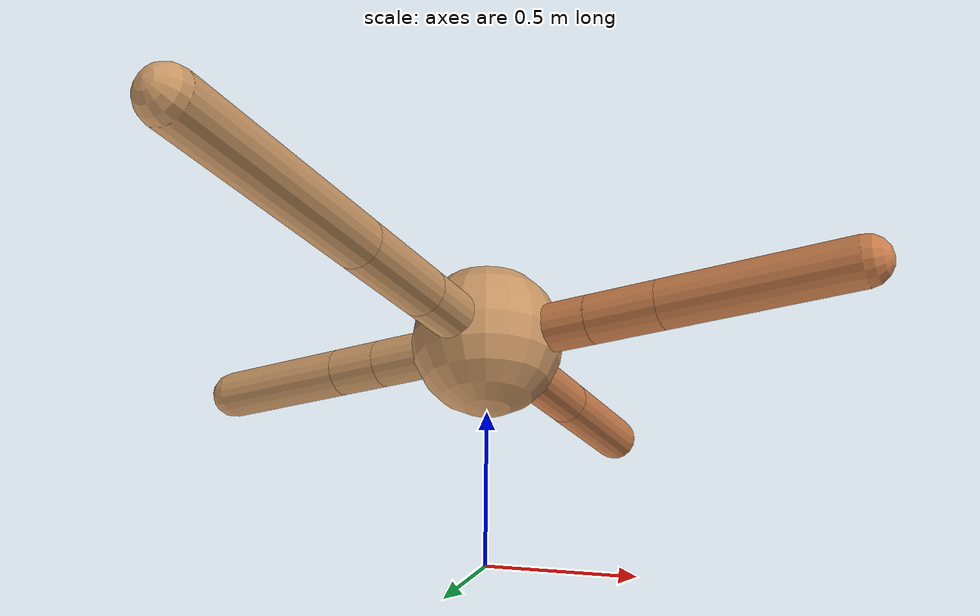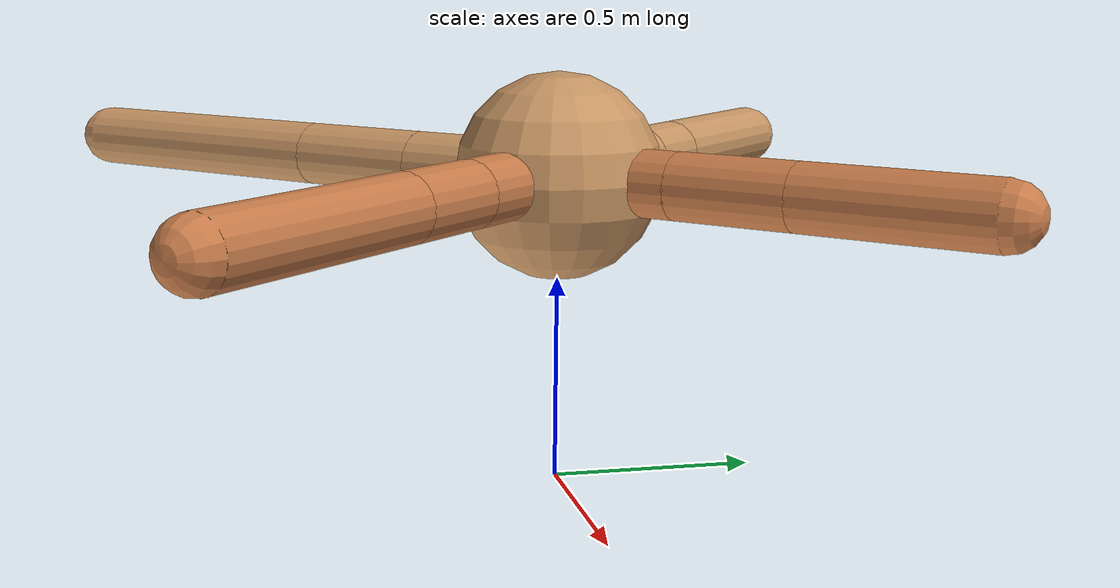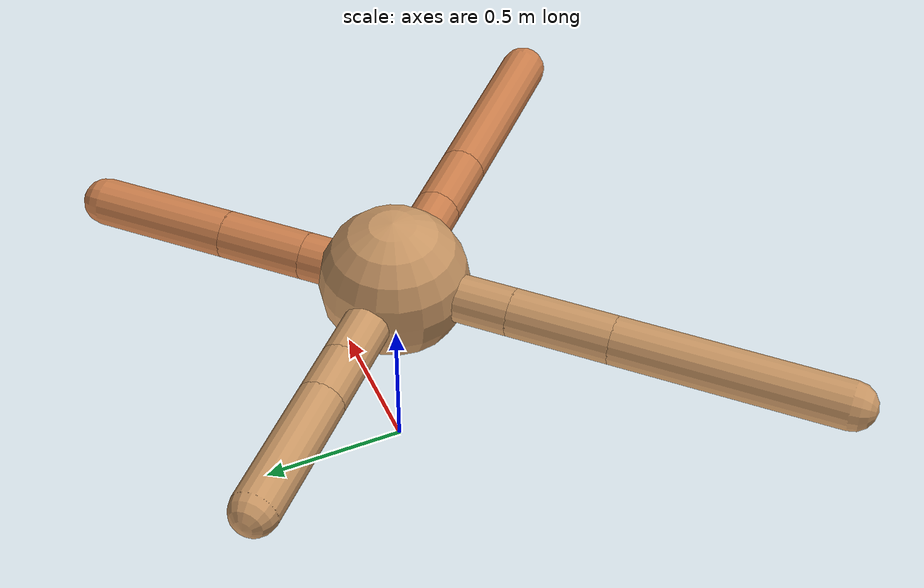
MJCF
<mujoco model="ant">
  <compiler angle="degree" coordinate="local" inertiafromgeom="true" />
  <option integrator="RK4" timestep="0.01" />
  <custom>
    <numeric data="0.0 0.0 0.55 1.0 0.0 0.0 0.0 0.0 1.0 0.0 -1.0 0.0 -1.0 0.0 1.0" name="init_qpos" />
  </custom>
  <default>
    <joint armature="1" damping="1" limited="true" />
    <geom conaffinity="0" condim="3" density="5.0" friction="1.5 0.1 0.1" margin="0.01" rgba="0.8 0.6 0.4 1" />
  </default>
  <worldbody>
    <body name="torso" pos="0 0 0.75">
      <geom name="torso_geom" pos="0 0 0" size="0.25" type="sphere" />

      <body name="front_left_leg" pos="0 0 0">
        <geom fromto="0.0 0.0 0.0 0.22548774422624526 0.22548774422624526 0.0" name="aux_1_geom" size="0.08" type="capsule" rgba=".8 .5 .3 1" />
        <body name="aux_1" pos="0.22548774422624526 0.22548774422624526 0.0">
          <joint axis="0 0 1" name="hip_1" pos="0.0 0.0 0.0" range="-40 40" type="hinge" />
          <geom fromto="0.0 0.0 0.0 0.20748369845722606 0.20748369845722606 0.0" name="left_leg_geom" size="0.08" type="capsule" rgba=".8 .5 .3 1" />
          <body pos="0.20748369845722606 0.20748369845722606 0.0" name="front_left_foot">
            <joint axis="-1 1 0" name="ankle_1" pos="0.0 0.0 0.0" range="30 100" type="hinge" />
            <geom fromto="0.0 0.0 0.0 0.3253573763626809 0.3253573763626809 0.0" name="left_ankle_geom" size="0.08" type="capsule" rgba=".8 .5 .3 1" />
          </body>
        </body>
      </body>
      <body name="front_right_leg" pos="0 0 0">
        <geom fromto="0.0 0.0 0.0 -0.2866396444672121 0.2866396444672121 0.0" name="aux_2_geom" size="0.08" type="capsule" />
        <body name="aux_2" pos="-0.2866396444672121 0.2866396444672121 0.0">
          <joint axis="0 0 1" name="hip_2" pos="0.0 0.0 0.0" range="-40 40" type="hinge" />
          <geom fromto="0.0 0.0 0.0 -0.12058626453796838 0.12058626453796838 0.0" name="right_leg_geom" size="0.08" type="capsule" />
          <body pos="-0.12058626453796838 0.12058626453796838 0.0" name="front_right_foot">
            <joint axis="1 1 0" name="ankle_2" pos="0.0 0.0 0.0" range="-100 -30" type="hinge" />
            <geom fromto="0.0 0.0 0.0 -0.32947060544747164 0.32947060544747164 0.0" name="right_ankle_geom" size="0.08" type="capsule" />
          </body>
        </body>
      </body>
      <body name="left_back_leg" pos="0 0 0">
        <geom fromto="0.0 0.0 0.0 -0.2906502955494893 -0.2906502955494893 0.0" name="aux_3_geom" size="0.08" type="capsule" />
        <body name="aux_3" pos="-0.2906502955494893 -0.2906502955494893 0.0">
          <joint axis="0 0 1" name="hip_3" pos="0.0 0.0 0.0" range="-40 40" type="hinge" />
          <geom fromto="0.0 0.0 0.0 -0.24302718733726347 -0.24302718733726347 0.0" name="back_leg_geom" size="0.08" type="capsule" />
          <body pos="-0.24302718733726347 -0.24302718733726347 0.0" name="left_back_foot">
            <joint axis="-1 1 0" name="ankle_3" pos="0.0 0.0 0.0" range="-100 -30" type="hinge" />
            <geom fromto="0.0 0.0 0.0 -0.5443062222441354 -0.5443062222441354 0.0" name="third_ankle_geom" size="0.08" type="capsule" />
          </body>
        </body>
      </body>
      <body name="right_back_leg" pos="0 0 0">
        <geom fromto="0.0 0.0 0.0 0.2645822024842634 -0.2645822024842634 0.0" name="aux_4_geom" size="0.08" type="capsule" rgba=".8 .5 .3 1" />
        <body name="aux_4" pos="0.2645822024842634 -0.2645822024842634 0.0">
          <joint axis="0 0 1" name="hip_4" pos="0.0 0.0 0.0" range="-40 40" type="hinge" />
          <geom fromto="0.0 0.0 0.0 0.16631379547083222 -0.16631379547083222 0.0" name="rightback_leg_geom" size="0.08" type="capsule" rgba=".8 .5 .3 1" />
          <body pos="0.16631379547083222 -0.16631379547083222 0.0" name="right_back_foot">
            <joint axis="1 1 0" name="ankle_4" pos="0.0 0.0 0.0" range="30 100" type="hinge" />
            <geom fromto="0.0 0.0 0.0 0.44063218697528195 -0.44063218697528195 0.0" name="fourth_ankle_geom" size="0.08" type="capsule" rgba=".8 .5 .3 1" />
          </body>
        </body>
      </body>
    </body>
  </worldbody>
  <actuator>
    <motor ctrllimited="true" ctrlrange="-1.0 1.0" joint="hip_4" gear="150" />
    <motor ctrllimited="true" ctrlrange="-1.0 1.0" joint="ankle_4" gear="150" />
    <motor ctrllimited="true" ctrlrange="-1.0 1.0" joint="hip_1" gear="150" />
    <motor ctrllimited="true" ctrlrange="-1.0 1.0" joint="ankle_1" gear="150" />
    <motor ctrllimited="true" ctrlrange="-1.0 1.0" joint="hip_2" gear="150" />
    <motor ctrllimited="true" ctrlrange="-1.0 1.0" joint="ankle_2" gear="150" />
    <motor ctrllimited="true" ctrlrange="-1.0 1.0" joint="hip_3" gear="150" />
    <motor ctrllimited="true" ctrlrange="-1.0 1.0" joint="ankle_3" gear="150" />
  </actuator>
</mujoco>
